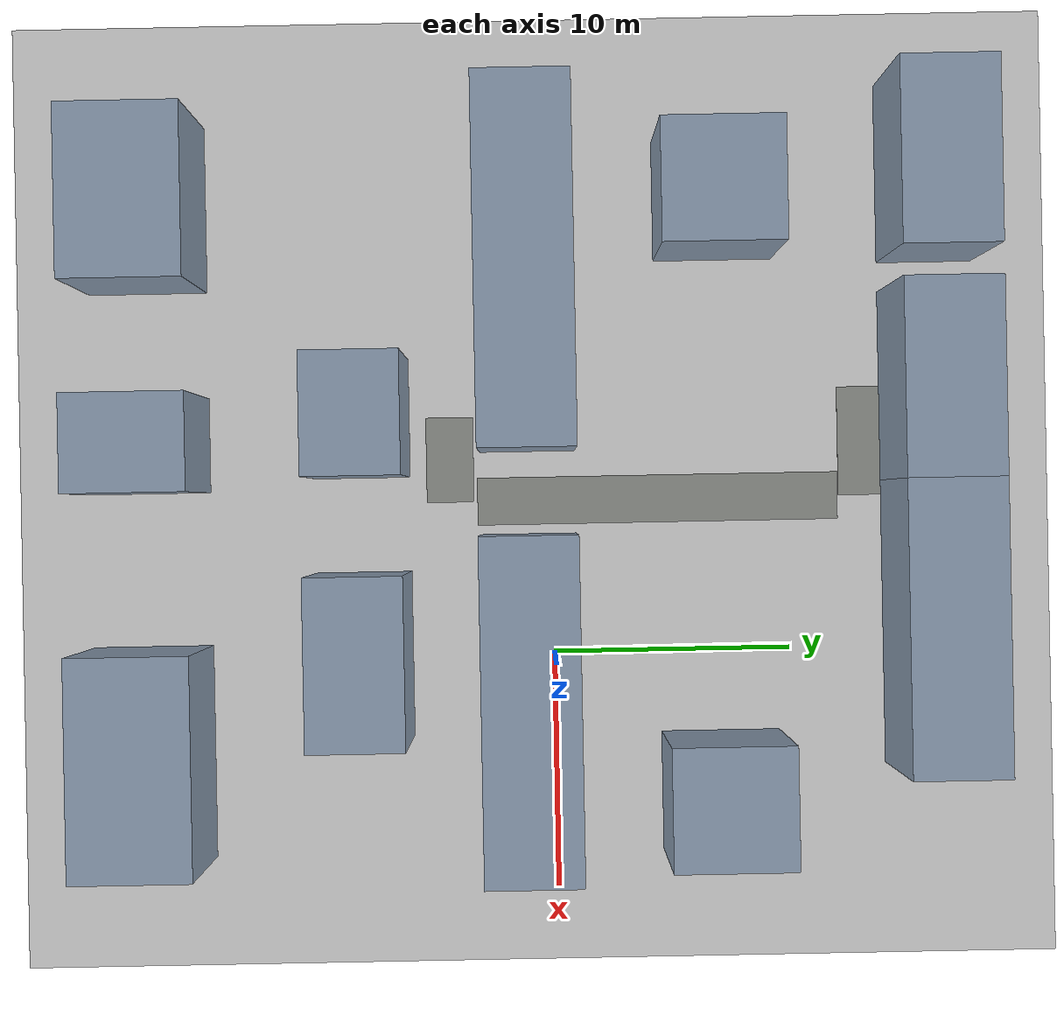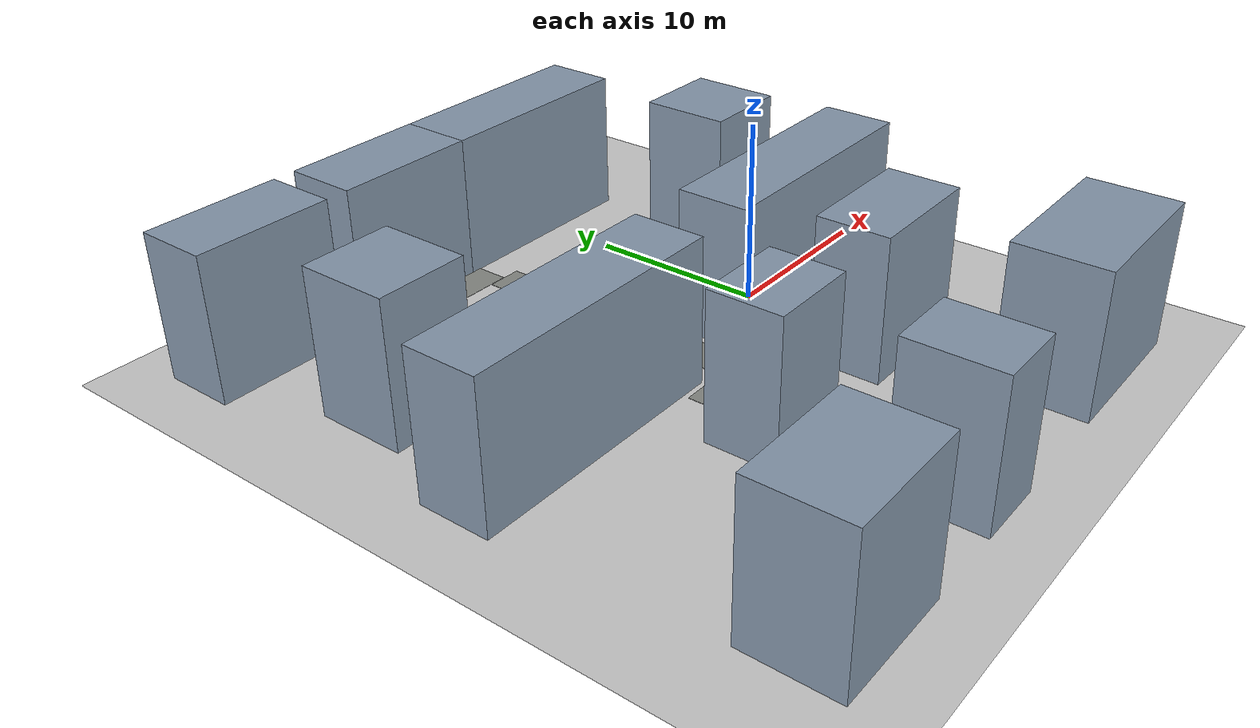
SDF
<?xml version="1.0"?>
<sdf version="1.7">
  <world name="th_deggendorf_schematic">
    <gravity>0 0 -9.81</gravity>
    <!-- Approximate geodetic anchor for GPS demonstrations only; local X/Y map is not surveyed. -->
    <spherical_coordinates>
      <surface_model>EARTH_WGS84</surface_model>
      <latitude_deg>48.82958</latitude_deg>
      <longitude_deg>12.95471</longitude_deg>
      <elevation>320</elevation>
      <heading_deg>0</heading_deg>
    </spherical_coordinates>
    <physics name="default_physics" type="ode"><max_step_size>0.001</max_step_size><real_time_factor>1</real_time_factor><real_time_update_rate>1000</real_time_update_rate></physics>
    <scene><ambient>0.55 0.55 0.55 1</ambient><background>0.82 0.87 0.91 1</background><shadows>true</shadows></scene>
    <light name="sun" type="directional"><cast_shadows>true</cast_shadows><pose>0 0 30 0 0 0</pose><diffuse>0.9 0.9 0.85 1</diffuse><specular>0.1 0.1 0.1 1</specular><direction>-0.4 0.2 -0.9</direction></light>
    <include><uri>model://ground_plane</uri></include>
    <model name="block_A">
      <static>true</static><pose>-20 16 4 0 0 0</pose>
      <link name="building">
        <collision name="collision"><geometry><box><size>7.5 4 8.0</size></box></geometry></collision>
        <visual name="visual"><geometry><box><size>7.5 4 8.0</size></box></geometry>
          <material><ambient>0.43 0.49 0.57 1</ambient><diffuse>0.53 0.60 0.68 1</diffuse><specular>0.08 0.08 0.08 1</specular></material>
        </visual>
      </link>
    </model>
    <model name="block_B">
      <static>true</static><pose>-11 16 4 0 0 0</pose>
      <link name="building">
        <collision name="collision"><geometry><box><size>8 4 8.0</size></box></geometry></collision>
        <visual name="visual"><geometry><box><size>8 4 8.0</size></box></geometry>
          <material><ambient>0.43 0.49 0.57 1</ambient><diffuse>0.53 0.60 0.68 1</diffuse><specular>0.08 0.08 0.08 1</specular></material>
        </visual>
      </link>
    </model>
    <model name="block_C">
      <static>true</static><pose>-1 16 4 0 0 0</pose>
      <link name="building">
        <collision name="collision"><geometry><box><size>12 4 8.0</size></box></geometry></collision>
        <visual name="visual"><geometry><box><size>12 4 8.0</size></box></geometry>
          <material><ambient>0.43 0.49 0.57 1</ambient><diffuse>0.53 0.60 0.68 1</diffuse><specular>0.08 0.08 0.08 1</specular></material>
        </visual>
      </link>
    </model>
    <model name="block_F">
      <static>true</static><pose>-19 7 4 0 0 0</pose>
      <link name="building">
        <collision name="collision"><geometry><box><size>5 5 8.0</size></box></geometry></collision>
        <visual name="visual"><geometry><box><size>5 5 8.0</size></box></geometry>
          <material><ambient>0.43 0.49 0.57 1</ambient><diffuse>0.53 0.60 0.68 1</diffuse><specular>0.08 0.08 0.08 1</specular></material>
        </visual>
      </link>
    </model>
    <model name="block_G">
      <static>true</static><pose>6 7 4 0 0 0</pose>
      <link name="building">
        <collision name="collision"><geometry><box><size>5 5 8.0</size></box></geometry></collision>
        <visual name="visual"><geometry><box><size>5 5 8.0</size></box></geometry>
          <material><ambient>0.43 0.49 0.57 1</ambient><diffuse>0.53 0.60 0.68 1</diffuse><specular>0.08 0.08 0.08 1</specular></material>
        </visual>
      </link>
    </model>
    <model name="block_D">
      <static>true</static><pose>-16 -1 4 0 0 0</pose>
      <link name="building">
        <collision name="collision"><geometry><box><size>15 4 8.0</size></box></geometry></collision>
        <visual name="visual"><geometry><box><size>15 4 8.0</size></box></geometry>
          <material><ambient>0.43 0.49 0.57 1</ambient><diffuse>0.53 0.60 0.68 1</diffuse><specular>0.08 0.08 0.08 1</specular></material>
        </visual>
      </link>
    </model>
    <model name="block_E">
      <static>true</static><pose>2 -1 4 0 0 0</pose>
      <link name="building">
        <collision name="collision"><geometry><box><size>14 4 8.0</size></box></geometry></collision>
        <visual name="visual"><geometry><box><size>14 4 8.0</size></box></geometry>
          <material><ambient>0.43 0.49 0.57 1</ambient><diffuse>0.53 0.60 0.68 1</diffuse><specular>0.08 0.08 0.08 1</specular></material>
        </visual>
      </link>
    </model>
    <model name="block_H">
      <static>true</static><pose>-10 -8 4 0 0 0</pose>
      <link name="building">
        <collision name="collision"><geometry><box><size>5 4 8.0</size></box></geometry></collision>
        <visual name="visual"><geometry><box><size>5 4 8.0</size></box></geometry>
          <material><ambient>0.43 0.49 0.57 1</ambient><diffuse>0.53 0.60 0.68 1</diffuse><specular>0.08 0.08 0.08 1</specular></material>
        </visual>
      </link>
    </model>
    <model name="block_I">
      <static>true</static><pose>0 -8 4 0 0 0</pose>
      <link name="building">
        <collision name="collision"><geometry><box><size>7 4 8.0</size></box></geometry></collision>
        <visual name="visual"><geometry><box><size>7 4 8.0</size></box></geometry>
          <material><ambient>0.43 0.49 0.57 1</ambient><diffuse>0.53 0.60 0.68 1</diffuse><specular>0.08 0.08 0.08 1</specular></material>
        </visual>
      </link>
    </model>
    <model name="block_J">
      <static>true</static><pose>-19 -17 4 0 0 0</pose>
      <link name="building">
        <collision name="collision"><geometry><box><size>7 5 8.0</size></box></geometry></collision>
        <visual name="visual"><geometry><box><size>7 5 8.0</size></box></geometry>
          <material><ambient>0.43 0.49 0.57 1</ambient><diffuse>0.53 0.60 0.68 1</diffuse><specular>0.08 0.08 0.08 1</specular></material>
        </visual>
      </link>
    </model>
    <model name="block_K">
      <static>true</static><pose>-9 -17 4 0 0 0</pose>
      <link name="building">
        <collision name="collision"><geometry><box><size>4 5 8.0</size></box></geometry></collision>
        <visual name="visual"><geometry><box><size>4 5 8.0</size></box></geometry>
          <material><ambient>0.43 0.49 0.57 1</ambient><diffuse>0.53 0.60 0.68 1</diffuse><specular>0.08 0.08 0.08 1</specular></material>
        </visual>
      </link>
    </model>
    <model name="block_L">
      <static>true</static><pose>4 -17 4 0 0 0</pose>
      <link name="building">
        <collision name="collision"><geometry><box><size>9 5 8.0</size></box></geometry></collision>
        <visual name="visual"><geometry><box><size>9 5 8.0</size></box></geometry>
          <material><ambient>0.43 0.49 0.57 1</ambient><diffuse>0.53 0.60 0.68 1</diffuse><specular>0.08 0.08 0.08 1</specular></material>
        </visual>
      </link>
    </model>
    <!-- Walkway strips are visual-only hints; the dimensions/route are schematic estimates. -->
    <model name="walkway_b_exit"><static>true</static><pose>-8.7 13.3 0.012 0 0 0</pose><link name="slab"><visual name="slab"><geometry><box><size>4.6 2.2 0.02</size></box></geometry><material><ambient>0.42 0.43 0.41 1</ambient><diffuse>0.53 0.54 0.52 1</diffuse></material></visual></link></model>
    <model name="walkway_central"><static>true</static><pose>-6.4 4.5 0.012 0 0 1.57079632679</pose><link name="slab"><visual name="slab"><geometry><box><size>15.3 2.0 0.02</size></box></geometry><material><ambient>0.42 0.43 0.41 1</ambient><diffuse>0.53 0.54 0.52 1</diffuse></material></visual></link></model>
    <model name="walkway_south_bypass"><static>true</static><pose>-8.2 -4.3 0.012 0 0 0</pose><link name="slab"><visual name="slab"><geometry><box><size>3.6 2.0 0.02</size></box></geometry><material><ambient>0.42 0.43 0.41 1</ambient><diffuse>0.53 0.54 0.52 1</diffuse></material></visual></link></model>
  </world>
</sdf>
